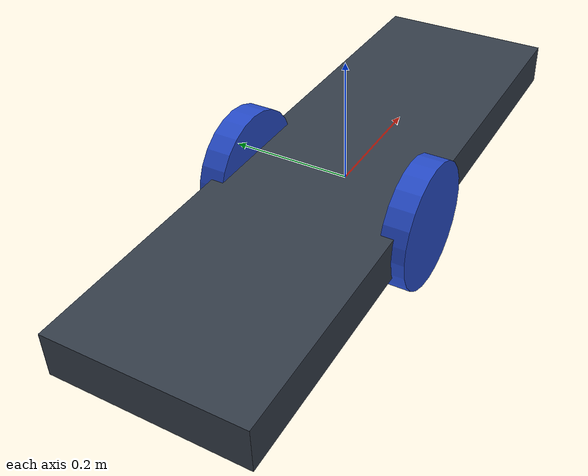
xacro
<?xml version="1.0" ?>
<robot name="robot2" xmlns:xacro="http://www.ros.org/wiki/xacro">

  <xacro:include filename="$(find part2_robot_descriptions)/urdf/materials.xacro" />
  <xacro:include filename="$(find part2_robot_descriptions)/urdf/robot_gazebo.xacro" />

  <link name="link_chassis">
    <!-- pose and inertial -->
    <pose>0 0 0.1 0 0 0</pose>
    <inertial>
      <mass value="10"/>
      <origin rpy="0 0 0" xyz="0 0 0.1"/>
      <inertia ixx="0.0395416666667" ixy="0" ixz="0" iyy="0.106208333333" iyz="0" izz="0.106208333333"/>
    </inertial>
    <!-- body -->
    <collision name="collision_chassis">
      <geometry>
        <box size="1 0.3 0.07"/>
      </geometry>
    </collision>
    <visual>
      <origin rpy="0 0 0" xyz="0 0 0"/>
      <geometry>
        <box size="1 0.3 0.07"/>
      </geometry>
      <material name="blue"/>
    </visual>
    <!-- caster front -->
    <collision name="caster_front_collision">
      <origin rpy=" 0 0 0" xyz="0.2 0 -0.05"/>
      <geometry>
        <sphere radius="0.05"/>
      </geometry>
      <surface>
        <friction>
          <ode>
            <mu>0</mu>
            <mu2>0</mu2>
            <slip1>1.0</slip1>
            <slip2>1.0</slip2>
          </ode>
        </friction>
      </surface>
    </collision>
    <visual name="caster_front_visual">
      <origin rpy=" 0 0 0" xyz="0.4 0 -0.05"/>
      <geometry>
        <sphere radius="0.05"/>
      </geometry>
    </visual>
    <visual name="caster_front_visual_2">
      <origin rpy=" 0 0 0" xyz="-0.4 0 -0.05"/>
      <geometry>
        <sphere radius="0.05"/>
      </geometry>
    </visual>
  </link>

  <link name="link_right_wheel">
    <inertial>
      <mass value="0.2"/>
      <origin rpy="0 1.5707 1.5707" xyz="0 0 0"/>
      <inertia ixx="0.000526666666667" ixy="0" ixz="0" iyy="0.000526666666667" iyz="0" izz="0.001"/>
    </inertial>
    <collision name="link_right_wheel_collision">
      <origin rpy="0 1.5707 1.5707" xyz="0 0 0"/>
      <geometry>
        <cylinder length="0.04" radius="0.1"/>
      </geometry>
    </collision>
    <visual name="link_right_wheel_visual">
      <origin rpy="0 1.5707 1.5707" xyz="0 0 0"/>
      <geometry>
        <cylinder length="0.04" radius="0.1"/>
      </geometry>
    </visual>
  </link>

  <joint name="joint_right_wheel" type="continuous">
    <origin rpy="0 0 0" xyz="-0.05 0.15 0"/>
    <child link="link_right_wheel"/>
    <parent link="link_chassis"/>
    <axis rpy="0 0 0" xyz="0 1 0"/>
    <limit effort="10000" velocity="1000"/>
    <joint_properties damping="1.0" friction="1.0"/>
  </joint>

  <link name="link_left_wheel">
    <inertial>
      <mass value="0.2"/>
      <origin rpy="0 1.5707 1.5707" xyz="0 0 0"/>
      <inertia ixx="0.000526666666667" ixy="0" ixz="0" iyy="0.000526666666667" iyz="0" izz="0.001"/>
    </inertial>
    <collision name="link_left_wheel_collision">
      <origin rpy="0 1.5707 1.5707" xyz="0 0 0"/>
      <geometry>
        <cylinder length="0.04" radius="0.1"/>
      </geometry>
    </collision>
    <visual name="link_left_wheel_visual">
      <origin rpy="0 1.5707 1.5707" xyz="0 0 0"/>
      <geometry>
        <cylinder length="0.04" radius="0.1"/>
      </geometry>
    </visual>
  </link>

  <joint name="joint_left_wheel" type="continuous">
    <origin rpy="0 0 0" xyz="-0.05 -0.15 0"/>
    <child link="link_left_wheel"/>
    <parent link="link_chassis"/>
    <axis rpy="0 0 0" xyz="0 1 0"/>
    <limit effort="10000" velocity="1000"/>
    <joint_properties damping="1.0" friction="1.0"/>
  </joint>

</robot>

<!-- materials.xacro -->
<robot>

  <material name="black">
    <color rgba="0.0 0.0 0.0 1.0"/>
  </material>

  <material name="blue">
    <color rgba="0.203125 0.23828125 0.28515625 1.0"/>
  </material>

  <material name="green">
    <color rgba="0.0 0.8 0.0 1.0"/>
  </material>

  <material name="grey">
    <color rgba="0.2 0.2 0.2 1.0"/>
  </material>

  <material name="orange">
    <color rgba="1.0 0.423529411765 0.0392156862745 1.0"/>
  </material>

  <material name="brown">
    <color rgba="0.870588235294 0.811764705882 0.764705882353 1.0"/>
  </material>

  <material name="red">
    <color rgba="0.80078125 0.12890625 0.1328125 1.0"/>
  </material>

  <material name="white">
    <color rgba="1.0 1.0 1.0 1.0"/>
  </material>
</robot>
